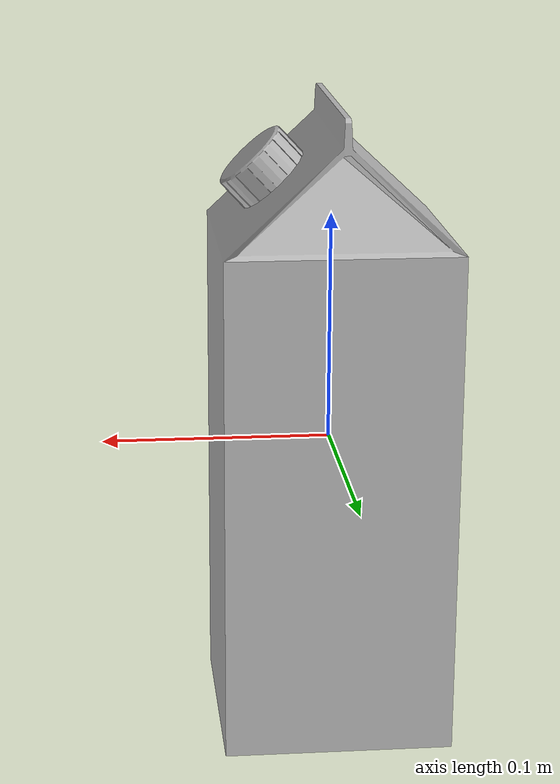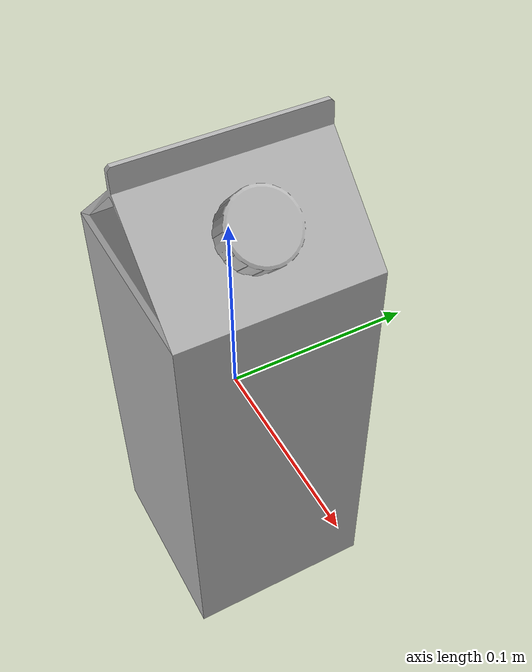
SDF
<?xml version="1.0" ?>
<sdf version="1.5">
  <model name="milk_carton">
    <link name="milk_carton">
      <gravity>false</gravity>
      <inertial>
        <mass>0.02</mass>
      </inertial>
      <collision name="milk_carton_collision">
        <geometry><box><size>0.0001 0.0001 0.0001</size></box></geometry>
          <surface>
            <contact>
              <collide_without_contact>true</collide_without_contact>
            </contact>
          </surface>
      </collision>
      <visual name="milk_carton_visual">
        <geometry>
          <mesh>
            <uri>model://milk_carton/meshes/milk_carton.stl</uri>
          </mesh>
        </geometry>
      </visual>
    </link>
  </model>
</sdf>
